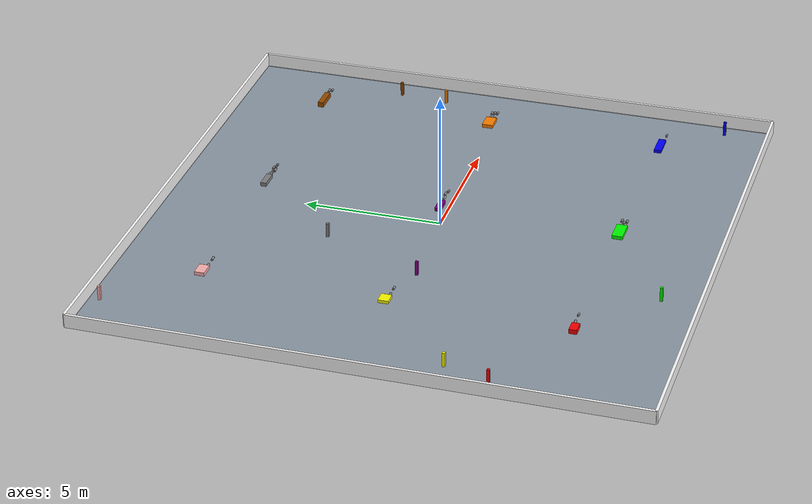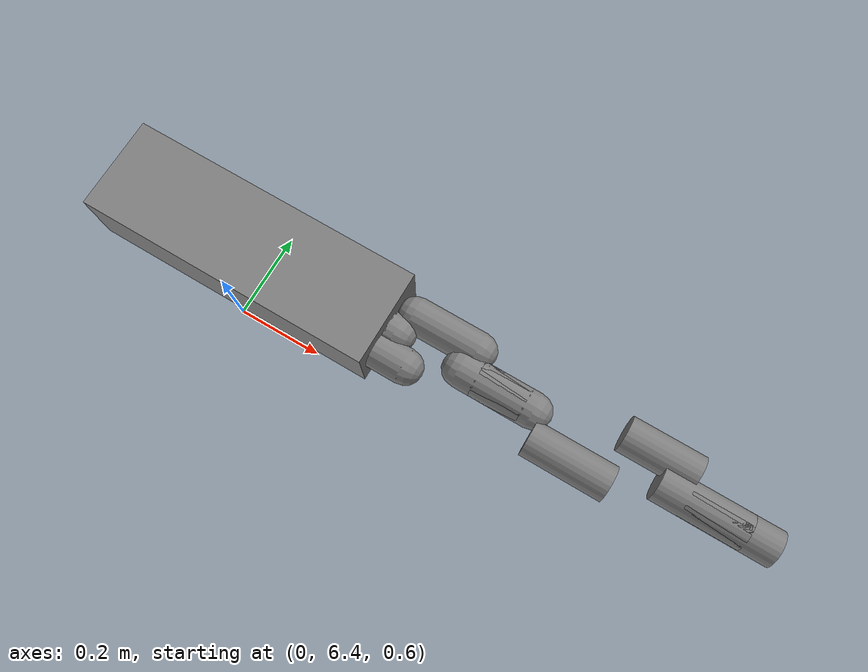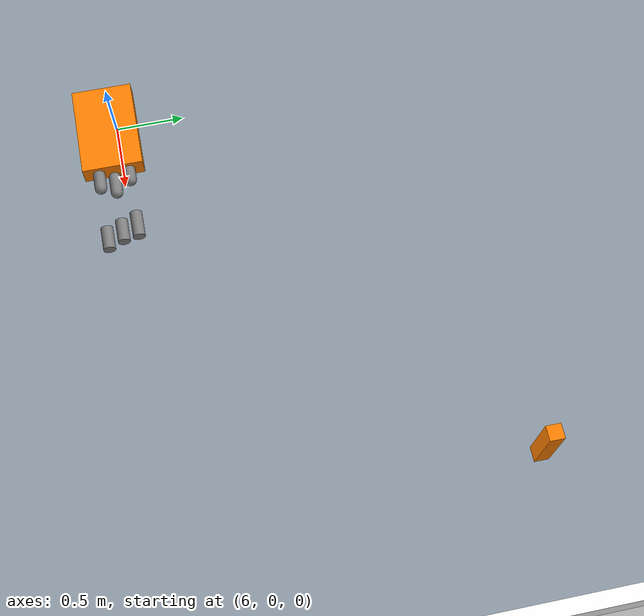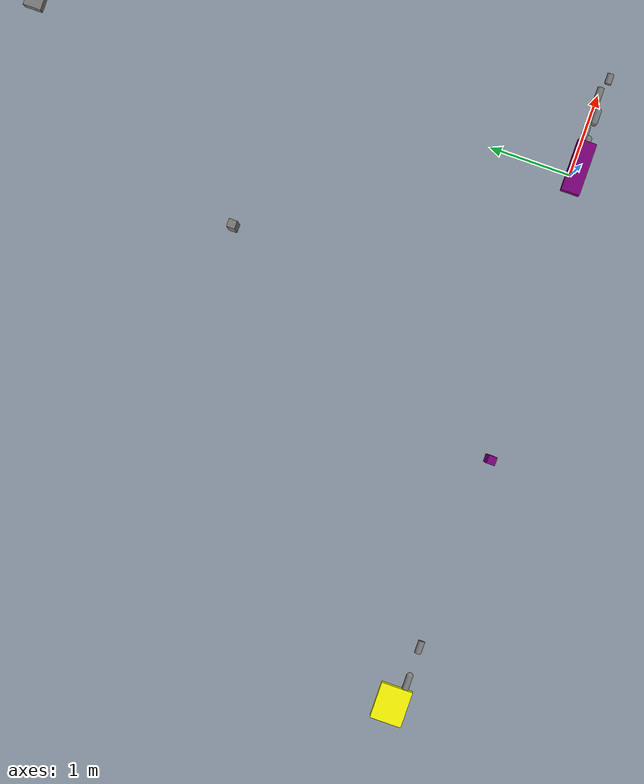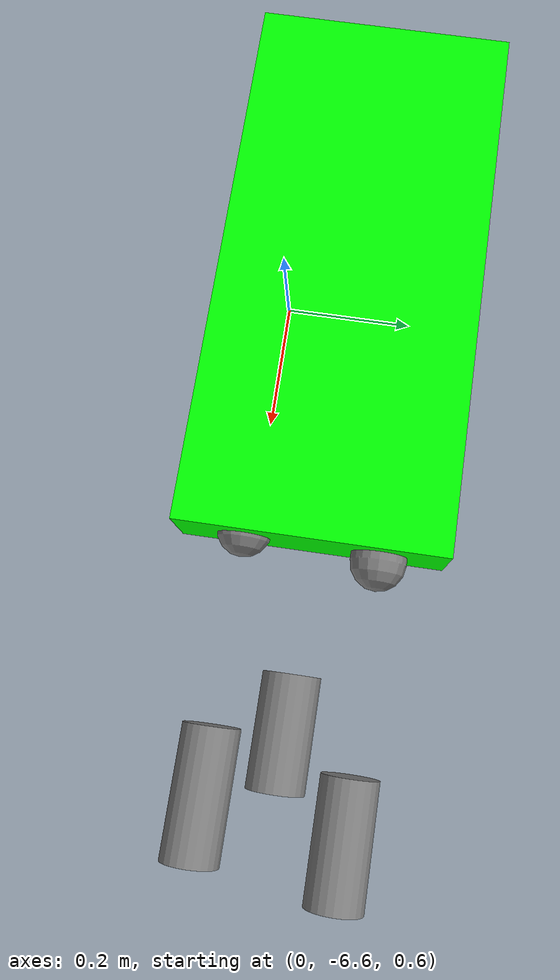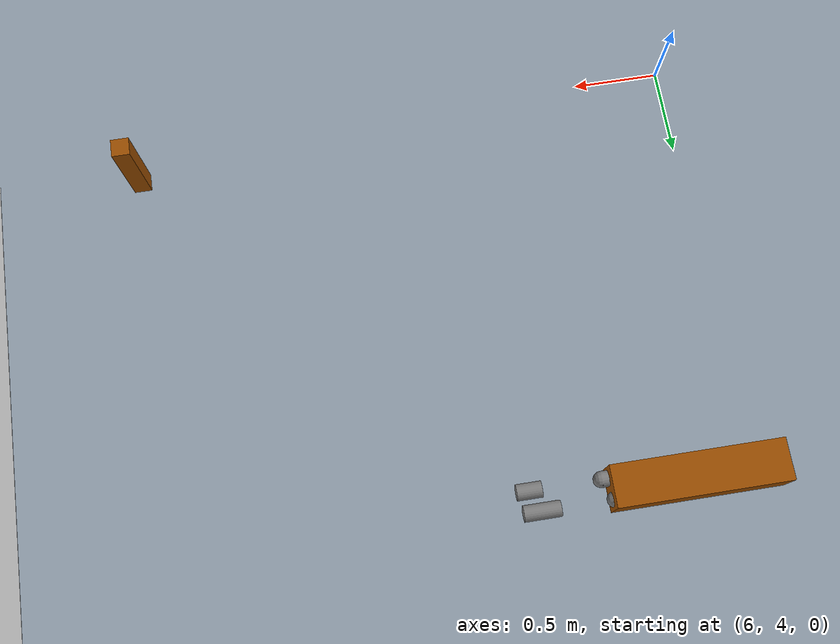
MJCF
<mujoco><option timestep="0.002" /><asset><texture name="checkered" type="2d" builtin="checker" rgb1="0.2 0.3 0.4" rgb2="0.9 0.9 0.9" width="512" height="512" /><material name="MatCheckered" texture="checkered" reflectance="0.5" /><material name="MatPlane" reflectance="0.5" shininess="1" specular="1" /><material name="red" rgba="1 0 0 1" /><material name="green" rgba="0 1 0 1" /><material name="blue" rgba="0 0 1 1" /><material name="yellow" rgba="1 1 0 1" /><material name="purple" rgba="0.5 0 0.5 1" /><material name="orange" rgba="1 0.5 0 1" /><material name="pink" rgba="1 0.7 0.7 1" /><material name="grey" rgba="0.5 0.5 0.5 1" /><material name="brown" rgba="0.6 0.3 0 1" /></asset><worldbody><geom name="floor" type="plane" size="10 10 0.1" pos="0 0 0" material="MatCheckered" /><body name="torso_0" pos="-6.5 -6.5 0.75"><geom name="torso_geom_torso_0" type="box" size="0.2227067932787442 0.13673996213910158 0.08442764344773176" pos="0 0 0" contype="1" conaffinity="1" material="red" /><joint name="torso_0_root" type="free" armature="0" damping="0" limited="false" /><site name="torso_0_site" pos="0 0 0" type="sphere" size="0.01" /><body name="leg_0_1" pos="0 0.06836998106955079 0"><geom name="leg_0_1_upper_geom" type="capsule" fromto="0.0 0.0 0.0 0.14552714767220581 0.0 0.0" size="0.04" /><joint name="leg_0_1_hip_joint" type="ball" damping="2.0" /><body name="leg_0_1_lower" pos="0.14552714767220581 0.0 0.0"><geom name="leg_0_1_lower_geom" type="capsule" fromto="0.14552714767220581 0.0 0.0 0.32343242023968966 0.0 0.0" size="0.04" /><joint name="leg_0_1_knee_joint" type="hinge" axis="0 1 0" range="-90 90" damping="4.0" limited="true" /><body name="leg_0_1_foot" pos="0.32343242023968966 0.0 0.0"><geom name="leg_0_1_foot_geom" type="cylinder" fromto="0.32343242023968966 0.0 0.0 0.44453812422186184 0.0 0.0" size="0.04" /><joint name="leg_0_1_ankle_joint" type="ball" damping="6.0" /></body></body></body></body><geom name="flag_0" type="box" size="0.05 0.05 0.5" pos="-9.266764355506266 -4.35640138992861 0" material="red" contype="1" conaffinity="1" /><body name="torso_1" pos="0 -6.5 0.75"><geom name="torso_geom_torso_1" type="box" size="0.40728499319575273 0.1930806543685259 0.0651113869433847" pos="0 0 0" contype="1" conaffinity="2" material="green" /><joint name="torso_1_root" type="free" armature="0" damping="0" limited="false" /><site name="torso_1_site" pos="0 0 0" type="sphere" size="0.01" /><body name="leg_1_1" pos="-0.20364249659787637 0 0"><geom name="leg_1_1_upper_geom" type="capsule" fromto="0.0 0.0 0.0 0.1848010148360092 0.0 0.0" size="0.04" /><joint name="leg_1_1_hip_joint" type="ball" damping="2.0" /><body name="leg_1_1_lower" pos="0.1848010148360092 0.0 0.0"><geom name="leg_1_1_lower_geom" type="capsule" fromto="0.1848010148360092 0.0 0.0 0.30193274476679577 0.0 0.0" size="0.04" /><joint name="leg_1_1_knee_joint" type="hinge" axis="0 1 0" range="-90 90" damping="4.0" limited="true" /><body name="leg_1_1_foot" pos="0.30193274476679577 0.0 0.0"><geom name="leg_1_1_foot_geom" type="cylinder" fromto="0.30193274476679577 0.0 0.0 0.45388000903011405 0.0 0.0" size="0.04" /><joint name="leg_1_1_ankle_joint" type="ball" damping="6.0" /></body></body></body><body name="leg_1_2" pos="0 -0.09654032718426295 0"><geom name="leg_1_2_upper_geom" type="capsule" fromto="0.0 0.0 0.0 0.12891196907114916 0.0 0.0" size="0.04" /><joint name="leg_1_2_hip_joint" type="ball" damping="2.0" /><body name="leg_1_2_lower" pos="0.12891196907114916 0.0 0.0"><geom name="leg_1_2_lower_geom" type="capsule" fromto="0.12891196907114916 0.0 0.0 0.26823189268572756 0.0 0.0" size="0.04" /><joint name="leg_1_2_knee_joint" type="hinge" axis="0 1 0" range="-90 90" damping="4.0" limited="true" /><body name="leg_1_2_foot" pos="0.26823189268572756 0.0 0.0"><geom name="leg_1_2_foot_geom" type="cylinder" fromto="0.26823189268572756 0.0 0.0 0.44233909948691014 0.0 0.0" size="0.04" /><joint name="leg_1_2_ankle_joint" type="ball" damping="6.0" /></body></body></body><body name="leg_1_3" pos="0 0.09654032718426295 0"><geom name="leg_1_3_upper_geom" type="capsule" fromto="0.0 0.0 0.0 0.13262527512560773 0.0 0.0" size="0.04" /><joint name="leg_1_3_hip_joint" type="ball" damping="2.0" /><body name="leg_1_3_lower" pos="0.13262527512560773 0.0 0.0"><geom name="leg_1_3_lower_geom" type="capsule" fromto="0.13262527512560773 0.0 0.0 0.2856559013416591 0.0 0.0" size="0.04" /><joint name="leg_1_3_knee_joint" type="hinge" axis="0 1 0" range="-90 90" damping="4.0" limited="true" /><body name="leg_1_3_foot" pos="0.2856559013416591 0.0 0.0"><geom name="leg_1_3_foot_geom" type="cylinder" fromto="0.2856559013416591 0.0 0.0 0.4494873924827916 0.0 0.0" size="0.04" /><joint name="leg_1_3_ankle_joint" type="ball" damping="6.0" /></body></body></body></body><geom name="flag_1" type="box" size="0.05 0.05 0.5" pos="-2.784581637940917 -8.620402108479022 0" material="green" contype="1" conaffinity="2" /><body name="torso_2" pos="6.5 -6.5 0.75"><geom name="torso_geom_torso_2" type="box" size="0.429851179017582 0.1341247765512264 0.058787970398088085" pos="0 0 0" contype="1" conaffinity="3" material="blue" /><joint name="torso_2_root" type="free" armature="0" damping="0" limited="false" /><site name="torso_2_site" pos="0 0 0" type="sphere" size="0.01" /><body name="leg_2_1" pos="0 -0.0670623882756132 0"><geom name="leg_2_1_upper_geom" type="capsule" fromto="0.0 0.0 0.0 0.1626434258977103 0.0 0.0" size="0.04" /><joint name="leg_2_1_hip_joint" type="ball" damping="2.0" /><body name="leg_2_1_lower" pos="0.1626434258977103 0.0 0.0"><geom name="leg_2_1_lower_geom" type="capsule" fromto="0.1626434258977103 0.0 0.0 0.31481340837706384 0.0 0.0" size="0.04" /><joint name="leg_2_1_knee_joint" type="hinge" axis="0 1 0" range="-90 90" damping="4.0" limited="true" /><body name="leg_2_1_foot" pos="0.31481340837706384 0.0 0.0"><geom name="leg_2_1_foot_geom" type="cylinder" fromto="0.31481340837706384 0.0 0.0 0.4421404203410306 0.0 0.0" size="0.04" /><joint name="leg_2_1_ankle_joint" type="ball" damping="6.0" /></body></body></body></body><geom name="flag_2" type="box" size="0.05 0.05 0.5" pos="9.468744536885445 -8.353794992633441 0" material="blue" contype="1" conaffinity="3" /><body name="torso_3" pos="-6.5 0 0.75"><geom name="torso_geom_torso_3" type="box" size="0.2111429319049632 0.18562595548976296 0.05607046761870743" pos="0 0 0" contype="1" conaffinity="4" material="yellow" /><joint name="torso_3_root" type="free" armature="0" damping="0" limited="false" /><site name="torso_3_site" pos="0 0 0" type="sphere" size="0.01" /><body name="leg_3_1" pos="0 -0.09281297774488148 0"><geom name="leg_3_1_upper_geom" type="capsule" fromto="0.0 0.0 0.0 0.10068880350528203 0.0 0.0" size="0.04" /><joint name="leg_3_1_hip_joint" type="ball" damping="2.0" /><body name="leg_3_1_lower" pos="0.10068880350528203 0.0 0.0"><geom name="leg_3_1_lower_geom" type="capsule" fromto="0.10068880350528203 0.0 0.0 0.273625355925596 0.0 0.0" size="0.04" /><joint name="leg_3_1_knee_joint" type="hinge" axis="0 1 0" range="-90 90" damping="4.0" limited="true" /><body name="leg_3_1_foot" pos="0.273625355925596 0.0 0.0"><geom name="leg_3_1_foot_geom" type="cylinder" fromto="0.273625355925596 0.0 0.0 0.42136980152046394 0.0 0.0" size="0.04" /><joint name="leg_3_1_ankle_joint" type="ball" damping="6.0" /></body></body></body></body><geom name="flag_3" type="box" size="0.05 0.05 0.5" pos="-8.724638416355322 -2.7020332929991966 0" material="yellow" contype="1" conaffinity="4" /><body name="torso_4" pos="0 0 0.75"><geom name="torso_geom_torso_4" type="box" size="0.30879902132628945 0.10998512741101503 0.06299637934040733" pos="0 0 0" contype="1" conaffinity="5" material="purple" /><joint name="torso_4_root" type="free" armature="0" damping="0" limited="false" /><site name="torso_4_site" pos="0 0 0" type="sphere" size="0.01" /><body name="leg_4_1" pos="0.15439951066314472 0 0"><geom name="leg_4_1_upper_geom" type="capsule" fromto="0.0 0.0 0.0 0.19446078593081906 0.0 0.0" size="0.04" /><joint name="leg_4_1_hip_joint" type="ball" damping="2.0" /><body name="leg_4_1_lower" pos="0.19446078593081906 0.0 0.0"><geom name="leg_4_1_lower_geom" type="capsule" fromto="0.19446078593081906 0.0 0.0 0.3324128448043428 0.0 0.0" size="0.04" /><joint name="leg_4_1_knee_joint" type="hinge" axis="0 1 0" range="-90 90" damping="4.0" limited="true" /><body name="leg_4_1_foot" pos="0.3324128448043428 0.0 0.0"><geom name="leg_4_1_foot_geom" type="cylinder" fromto="0.3324128448043428 0.0 0.0 0.45227875841120113 0.0 0.0" size="0.04" /><joint name="leg_4_1_ankle_joint" type="ball" damping="6.0" /></body></body></body><body name="leg_4_2" pos="0 0.054992563705507515 0"><geom name="leg_4_2_upper_geom" type="capsule" fromto="0.0 0.0 0.0 0.16843888542889596 0.0 0.0" size="0.04" /><joint name="leg_4_2_hip_joint" type="ball" damping="2.0" /><body name="leg_4_2_lower" pos="0.16843888542889596 0.0 0.0"><geom name="leg_4_2_lower_geom" type="capsule" fromto="0.16843888542889596 0.0 0.0 0.2946134324324967 0.0 0.0" size="0.04" /><joint name="leg_4_2_knee_joint" type="hinge" axis="0 1 0" range="-90 90" damping="4.0" limited="true" /><body name="leg_4_2_foot" pos="0.2946134324324967 0.0 0.0"><geom name="leg_4_2_foot_geom" type="cylinder" fromto="0.2946134324324967 0.0 0.0 0.48785536310888006 0.0 0.0" size="0.04" /><joint name="leg_4_2_ankle_joint" type="ball" damping="6.0" /></body></body></body></body><geom name="flag_4" type="box" size="0.05 0.05 0.5" pos="-3.494609772260917 -0.1941714181297058 0" material="purple" contype="1" conaffinity="5" /><body name="torso_5" pos="6.5 0 0.75"><geom name="torso_geom_torso_5" type="box" size="0.30823930687382384 0.19819068417255883 0.06748901014346327" pos="0 0 0" contype="1" conaffinity="6" material="orange" /><joint name="torso_5_root" type="free" armature="0" damping="0" limited="false" /><site name="torso_5_site" pos="0 0 0" type="sphere" size="0.01" /><body name="leg_5_1" pos="0.15411965343691192 0 0"><geom name="leg_5_1_upper_geom" type="capsule" fromto="0.0 0.0 0.0 0.10266053988654102 0.0 0.0" size="0.04" /><joint name="leg_5_1_hip_joint" type="ball" damping="2.0" /><body name="leg_5_1_lower" pos="0.10266053988654102 0.0 0.0"><geom name="leg_5_1_lower_geom" type="capsule" fromto="0.10266053988654102 0.0 0.0 0.21124342628020923 0.0 0.0" size="0.04" /><joint name="leg_5_1_knee_joint" type="hinge" axis="0 1 0" range="-90 90" damping="4.0" limited="true" /><body name="leg_5_1_foot" pos="0.21124342628020923 0.0 0.0"><geom name="leg_5_1_foot_geom" type="cylinder" fromto="0.21124342628020923 0.0 0.0 0.3669837011976216 0.0 0.0" size="0.04" /><joint name="leg_5_1_ankle_joint" type="ball" damping="6.0" /></body></body></body><body name="leg_5_2" pos="0 -0.09909534208627942 0"><geom name="leg_5_2_upper_geom" type="capsule" fromto="0.0 0.0 0.0 0.11897872677785055 0.0 0.0" size="0.04" /><joint name="leg_5_2_hip_joint" type="ball" damping="2.0" /><body name="leg_5_2_lower" pos="0.11897872677785055 0.0 0.0"><geom name="leg_5_2_lower_geom" type="capsule" fromto="0.11897872677785055 0.0 0.0 0.2986384849048338 0.0 0.0" size="0.04" /><joint name="leg_5_2_knee_joint" type="hinge" axis="0 1 0" range="-90 90" damping="4.0" limited="true" /><body name="leg_5_2_foot" pos="0.2986384849048338 0.0 0.0"><geom name="leg_5_2_foot_geom" type="cylinder" fromto="0.2986384849048338 0.0 0.0 0.4552964427719733 0.0 0.0" size="0.04" /><joint name="leg_5_2_ankle_joint" type="ball" damping="6.0" /></body></body></body><body name="leg_5_3" pos="0 0.09909534208627942 0"><geom name="leg_5_3_upper_geom" type="capsule" fromto="0.0 0.0 0.0 0.14475475089606166 0.0 0.0" size="0.04" /><joint name="leg_5_3_hip_joint" type="ball" damping="2.0" /><body name="leg_5_3_lower" pos="0.14475475089606166 0.0 0.0"><geom name="leg_5_3_lower_geom" type="capsule" fromto="0.14475475089606166 0.0 0.0 0.24829787290027394 0.0 0.0" size="0.04" /><joint name="leg_5_3_knee_joint" type="hinge" axis="0 1 0" range="-90 90" damping="4.0" limited="true" /><body name="leg_5_3_foot" pos="0.24829787290027394 0.0 0.0"><geom name="leg_5_3_foot_geom" type="cylinder" fromto="0.24829787290027394 0.0 0.0 0.4246830207797605 0.0 0.0" size="0.04" /><joint name="leg_5_3_ankle_joint" type="ball" damping="6.0" /></body></body></body></body><geom name="flag_5" type="box" size="0.05 0.05 0.5" pos="9.031807291485261 2.4165992300714803 0" material="orange" contype="1" conaffinity="6" /><body name="torso_6" pos="-6.5 6.5 0.75"><geom name="torso_geom_torso_6" type="box" size="0.26371616814831994 0.17634651151124267 0.06607094903497564" pos="0 0 0" contype="1" conaffinity="7" material="pink" /><joint name="torso_6_root" type="free" armature="0" damping="0" limited="false" /><site name="torso_6_site" pos="0 0 0" type="sphere" size="0.01" /><body name="leg_6_1" pos="0 -0.08817325575562134 0"><geom name="leg_6_1_upper_geom" type="capsule" fromto="0.0 0.0 0.0 0.11300646566478323 0.0 0.0" size="0.04" /><joint name="leg_6_1_hip_joint" type="ball" damping="2.0" /><body name="leg_6_1_lower" pos="0.11300646566478323 0.0 0.0"><geom name="leg_6_1_lower_geom" type="capsule" fromto="0.11300646566478323 0.0 0.0 0.30056562753752125 0.0 0.0" size="0.04" /><joint name="leg_6_1_knee_joint" type="hinge" axis="0 1 0" range="-90 90" damping="4.0" limited="true" /><body name="leg_6_1_foot" pos="0.30056562753752125 0.0 0.0"><geom name="leg_6_1_foot_geom" type="cylinder" fromto="0.30056562753752125 0.0 0.0 0.4908883483956812 0.0 0.0" size="0.04" /><joint name="leg_6_1_ankle_joint" type="ball" damping="6.0" /></body></body></body></body><geom name="flag_6" type="box" size="0.05 0.05 0.5" pos="-8.070016605701648 9.62810611358072 0" material="pink" contype="1" conaffinity="7" /><body name="torso_7" pos="0 6.5 0.75"><geom name="torso_geom_torso_7" type="box" size="0.337317275757508 0.10628280798551129 0.07278876406905876" pos="0 0 0" contype="1" conaffinity="8" material="grey" /><joint name="torso_7_root" type="free" armature="0" damping="0" limited="false" /><site name="torso_7_site" pos="0 0 0" type="sphere" size="0.01" /><body name="leg_7_1" pos="0.168658637878754 0 0"><geom name="leg_7_1_upper_geom" type="capsule" fromto="0.0 0.0 0.0 0.19005078288363614 0.0 0.0" size="0.04" /><joint name="leg_7_1_hip_joint" type="ball" damping="2.0" /><body name="leg_7_1_lower" pos="0.19005078288363614 0.0 0.0"><geom name="leg_7_1_lower_geom" type="capsule" fromto="0.19005078288363614 0.0 0.0 0.30005793614040244 0.0 0.0" size="0.04" /><joint name="leg_7_1_knee_joint" type="hinge" axis="0 1 0" range="-90 90" damping="4.0" limited="true" /><body name="leg_7_1_foot" pos="0.30005793614040244 0.0 0.0"><geom name="leg_7_1_foot_geom" type="cylinder" fromto="0.30005793614040244 0.0 0.0 0.49427498605730436 0.0 0.0" size="0.04" /><joint name="leg_7_1_ankle_joint" type="ball" damping="6.0" /></body></body></body><body name="leg_7_2" pos="0 0.053141403992755645 0"><geom name="leg_7_2_upper_geom" type="capsule" fromto="0.0 0.0 0.0 0.18535870391995468 0.0 0.0" size="0.04" /><joint name="leg_7_2_hip_joint" type="ball" damping="2.0" /><body name="leg_7_2_lower" pos="0.18535870391995468 0.0 0.0"><geom name="leg_7_2_lower_geom" type="capsule" fromto="0.18535870391995468 0.0 0.0 0.33690306720684016 0.0 0.0" size="0.04" /><joint name="leg_7_2_knee_joint" type="hinge" axis="0 1 0" range="-90 90" damping="4.0" limited="true" /><body name="leg_7_2_foot" pos="0.33690306720684016 0.0 0.0"><geom name="leg_7_2_foot_geom" type="cylinder" fromto="0.33690306720684016 0.0 0.0 0.5004794861436073 0.0 0.0" size="0.04" /><joint name="leg_7_2_ankle_joint" type="ball" damping="6.0" /></body></body></body><body name="leg_7_3" pos="0.168658637878754 0 0"><geom name="leg_7_3_upper_geom" type="capsule" fromto="0.0 0.0 0.0 0.17003394328607668 0.0 0.0" size="0.04" /><joint name="leg_7_3_hip_joint" type="ball" damping="2.0" /><body name="leg_7_3_lower" pos="0.17003394328607668 0.0 0.0"><geom name="leg_7_3_lower_geom" type="capsule" fromto="0.17003394328607668 0.0 0.0 0.3412915278532436 0.0 0.0" size="0.04" /><joint name="leg_7_3_knee_joint" type="hinge" axis="0 1 0" range="-90 90" damping="4.0" limited="true" /><body name="leg_7_3_foot" pos="0.3412915278532436 0.0 0.0"><geom name="leg_7_3_foot_geom" type="cylinder" fromto="0.3412915278532436 0.0 0.0 0.5362706830735041 0.0 0.0" size="0.04" /><joint name="leg_7_3_ankle_joint" type="ball" damping="6.0" /></body></body></body><body name="leg_7_4" pos="0 -0.053141403992755645 0"><geom name="leg_7_4_upper_geom" type="capsule" fromto="0.0 0.0 0.0 0.11931487119587542 0.0 0.0" size="0.04" /><joint name="leg_7_4_hip_joint" type="ball" damping="2.0" /><body name="leg_7_4_lower" pos="0.11931487119587542 0.0 0.0"><geom name="leg_7_4_lower_geom" type="capsule" fromto="0.11931487119587542 0.0 0.0 0.2885854577443455 0.0 0.0" size="0.04" /><joint name="leg_7_4_knee_joint" type="hinge" axis="0 1 0" range="-90 90" damping="4.0" limited="true" /><body name="leg_7_4_foot" pos="0.2885854577443455 0.0 0.0"><geom name="leg_7_4_foot_geom" type="cylinder" fromto="0.2885854577443455 0.0 0.0 0.4722952152382479 0.0 0.0" size="0.04" /><joint name="leg_7_4_ankle_joint" type="ball" damping="6.0" /></body></body></body></body><geom name="flag_7" type="box" size="0.05 0.05 0.5" pos="-1.8969802390127009 3.558662553735917 0" material="grey" contype="1" conaffinity="8" /><body name="torso_8" pos="6.5 6.5 0.75"><geom name="torso_geom_torso_8" type="box" size="0.4271906429409304 0.10306085041496241 0.09822451894765913" pos="0 0 0" contype="1" conaffinity="9" material="brown" /><joint name="torso_8_root" type="free" armature="0" damping="0" limited="false" /><site name="torso_8_site" pos="0 0 0" type="sphere" size="0.01" /><body name="leg_8_1" pos="0 -0.051530425207481204 0"><geom name="leg_8_1_upper_geom" type="capsule" fromto="0.0 0.0 0.0 0.17140836234782222 0.0 0.0" size="0.04" /><joint name="leg_8_1_hip_joint" type="ball" damping="2.0" /><body name="leg_8_1_lower" pos="0.17140836234782222 0.0 0.0"><geom name="leg_8_1_lower_geom" type="capsule" fromto="0.17140836234782222 0.0 0.0 0.28921088270807294 0.0 0.0" size="0.04" /><joint name="leg_8_1_knee_joint" type="hinge" axis="0 1 0" range="-90 90" damping="4.0" limited="true" /><body name="leg_8_1_foot" pos="0.28921088270807294 0.0 0.0"><geom name="leg_8_1_foot_geom" type="cylinder" fromto="0.28921088270807294 0.0 0.0 0.4127998505641652 0.0 0.0" size="0.04" /><joint name="leg_8_1_ankle_joint" type="ball" damping="6.0" /></body></body></body><body name="leg_8_2" pos="0 0.051530425207481204 0"><geom name="leg_8_2_upper_geom" type="capsule" fromto="0.0 0.0 0.0 0.15076687655623042 0.0 0.0" size="0.04" /><joint name="leg_8_2_hip_joint" type="ball" damping="2.0" /><body name="leg_8_2_lower" pos="0.15076687655623042 0.0 0.0"><geom name="leg_8_2_lower_geom" type="capsule" fromto="0.15076687655623042 0.0 0.0 0.2625497390542252 0.0 0.0" size="0.04" /><joint name="leg_8_2_knee_joint" type="hinge" axis="0 1 0" range="-90 90" damping="4.0" limited="true" /><body name="leg_8_2_foot" pos="0.2625497390542252 0.0 0.0"><geom name="leg_8_2_foot_geom" type="cylinder" fromto="0.2625497390542252 0.0 0.0 0.4436113180687583 0.0 0.0" size="0.04" /><joint name="leg_8_2_ankle_joint" type="ball" damping="6.0" /></body></body></body></body><geom name="flag_8" type="box" size="0.05 0.05 0.5" pos="9.160686538727383 4.226072309277425 0" material="brown" contype="1" conaffinity="9" /><geom name="north_wall" type="box" pos="0 10.05 0.25" size="10.05 0.05 0.25" material="MatPlane" /><geom name="south_wall" type="box" pos="0 -10.05 0.25" size="10.05 0.05 0.25" material="MatPlane" /><geom name="east_wall" type="box" pos="10.05 0 0.25" size="0.05 10.05 0.25" material="MatPlane" /><geom name="west_wall" type="box" pos="-10.05 0 0.25" size="0.05 10.05 0.25" material="MatPlane" /></worldbody><actuator><motor name="leg_0_1_hip_motor" joint="leg_0_1_hip_joint" ctrllimited="true" ctrlrange="-1 1" gear="200" /><motor name="leg_0_1_ankle_joint_motor" joint="leg_0_1_ankle_joint" ctrllimited="true" ctrlrange="-1 1" gear="200" /><motor name="leg_1_1_hip_motor" joint="leg_1_1_hip_joint" ctrllimited="true" ctrlrange="-1 1" gear="200" /><motor name="leg_1_1_ankle_joint_motor" joint="leg_1_1_ankle_joint" ctrllimited="true" ctrlrange="-1 1" gear="200" /><motor name="leg_1_2_hip_motor" joint="leg_1_2_hip_joint" ctrllimited="true" ctrlrange="-1 1" gear="200" /><motor name="leg_1_2_ankle_joint_motor" joint="leg_1_2_ankle_joint" ctrllimited="true" ctrlrange="-1 1" gear="200" /><motor name="leg_1_3_hip_motor" joint="leg_1_3_hip_joint" ctrllimited="true" ctrlrange="-1 1" gear="200" /><motor name="leg_1_3_ankle_joint_motor" joint="leg_1_3_ankle_joint" ctrllimited="true" ctrlrange="-1 1" gear="200" /><motor name="leg_2_1_hip_motor" joint="leg_2_1_hip_joint" ctrllimited="true" ctrlrange="-1 1" gear="200" /><motor name="leg_2_1_ankle_joint_motor" joint="leg_2_1_ankle_joint" ctrllimited="true" ctrlrange="-1 1" gear="200" /><motor name="leg_3_1_hip_motor" joint="leg_3_1_hip_joint" ctrllimited="true" ctrlrange="-1 1" gear="200" /><motor name="leg_3_1_ankle_joint_motor" joint="leg_3_1_ankle_joint" ctrllimited="true" ctrlrange="-1 1" gear="200" /><motor name="leg_4_1_hip_motor" joint="leg_4_1_hip_joint" ctrllimited="true" ctrlrange="-1 1" gear="200" /><motor name="leg_4_1_ankle_joint_motor" joint="leg_4_1_ankle_joint" ctrllimited="true" ctrlrange="-1 1" gear="200" /><motor name="leg_4_2_hip_motor" joint="leg_4_2_hip_joint" ctrllimited="true" ctrlrange="-1 1" gear="200" /><motor name="leg_4_2_ankle_joint_motor" joint="leg_4_2_ankle_joint" ctrllimited="true" ctrlrange="-1 1" gear="200" /><motor name="leg_5_1_hip_motor" joint="leg_5_1_hip_joint" ctrllimited="true" ctrlrange="-1 1" gear="200" /><motor name="leg_5_1_ankle_joint_motor" joint="leg_5_1_ankle_joint" ctrllimited="true" ctrlrange="-1 1" gear="200" /><motor name="leg_5_2_hip_motor" joint="leg_5_2_hip_joint" ctrllimited="true" ctrlrange="-1 1" gear="200" /><motor name="leg_5_2_ankle_joint_motor" joint="leg_5_2_ankle_joint" ctrllimited="true" ctrlrange="-1 1" gear="200" /><motor name="leg_5_3_hip_motor" joint="leg_5_3_hip_joint" ctrllimited="true" ctrlrange="-1 1" gear="200" /><motor name="leg_5_3_ankle_joint_motor" joint="leg_5_3_ankle_joint" ctrllimited="true" ctrlrange="-1 1" gear="200" /><motor name="leg_6_1_hip_motor" joint="leg_6_1_hip_joint" ctrllimited="true" ctrlrange="-1 1" gear="200" /><motor name="leg_6_1_ankle_joint_motor" joint="leg_6_1_ankle_joint" ctrllimited="true" ctrlrange="-1 1" gear="200" /><motor name="leg_7_1_hip_motor" joint="leg_7_1_hip_joint" ctrllimited="true" ctrlrange="-1 1" gear="200" /><motor name="leg_7_1_ankle_joint_motor" joint="leg_7_1_ankle_joint" ctrllimited="true" ctrlrange="-1 1" gear="200" /><motor name="leg_7_2_hip_motor" joint="leg_7_2_hip_joint" ctrllimited="true" ctrlrange="-1 1" gear="200" /><motor name="leg_7_2_ankle_joint_motor" joint="leg_7_2_ankle_joint" ctrllimited="true" ctrlrange="-1 1" gear="200" /><motor name="leg_7_3_hip_motor" joint="leg_7_3_hip_joint" ctrllimited="true" ctrlrange="-1 1" gear="200" /><motor name="leg_7_3_ankle_joint_motor" joint="leg_7_3_ankle_joint" ctrllimited="true" ctrlrange="-1 1" gear="200" /><motor name="leg_7_4_hip_motor" joint="leg_7_4_hip_joint" ctrllimited="true" ctrlrange="-1 1" gear="200" /><motor name="leg_7_4_ankle_joint_motor" joint="leg_7_4_ankle_joint" ctrllimited="true" ctrlrange="-1 1" gear="200" /><motor name="leg_8_1_hip_motor" joint="leg_8_1_hip_joint" ctrllimited="true" ctrlrange="-1 1" gear="200" /><motor name="leg_8_1_ankle_joint_motor" joint="leg_8_1_ankle_joint" ctrllimited="true" ctrlrange="-1 1" gear="200" /><motor name="leg_8_2_hip_motor" joint="leg_8_2_hip_joint" ctrllimited="true" ctrlrange="-1 1" gear="200" /><motor name="leg_8_2_ankle_joint_motor" joint="leg_8_2_ankle_joint" ctrllimited="true" ctrlrange="-1 1" gear="200" /></actuator><sensor><accelerometer name="torso_0_accel" site="torso_0_site" /><gyro name="torso_0_gyro" site="torso_0_site" /><accelerometer name="torso_1_accel" site="torso_1_site" /><gyro name="torso_1_gyro" site="torso_1_site" /><accelerometer name="torso_2_accel" site="torso_2_site" /><gyro name="torso_2_gyro" site="torso_2_site" /><accelerometer name="torso_3_accel" site="torso_3_site" /><gyro name="torso_3_gyro" site="torso_3_site" /><accelerometer name="torso_4_accel" site="torso_4_site" /><gyro name="torso_4_gyro" site="torso_4_site" /><accelerometer name="torso_5_accel" site="torso_5_site" /><gyro name="torso_5_gyro" site="torso_5_site" /><accelerometer name="torso_6_accel" site="torso_6_site" /><gyro name="torso_6_gyro" site="torso_6_site" /><accelerometer name="torso_7_accel" site="torso_7_site" /><gyro name="torso_7_gyro" site="torso_7_site" /><accelerometer name="torso_8_accel" site="torso_8_site" /><gyro name="torso_8_gyro" site="torso_8_site" /></sensor></mujoco>
